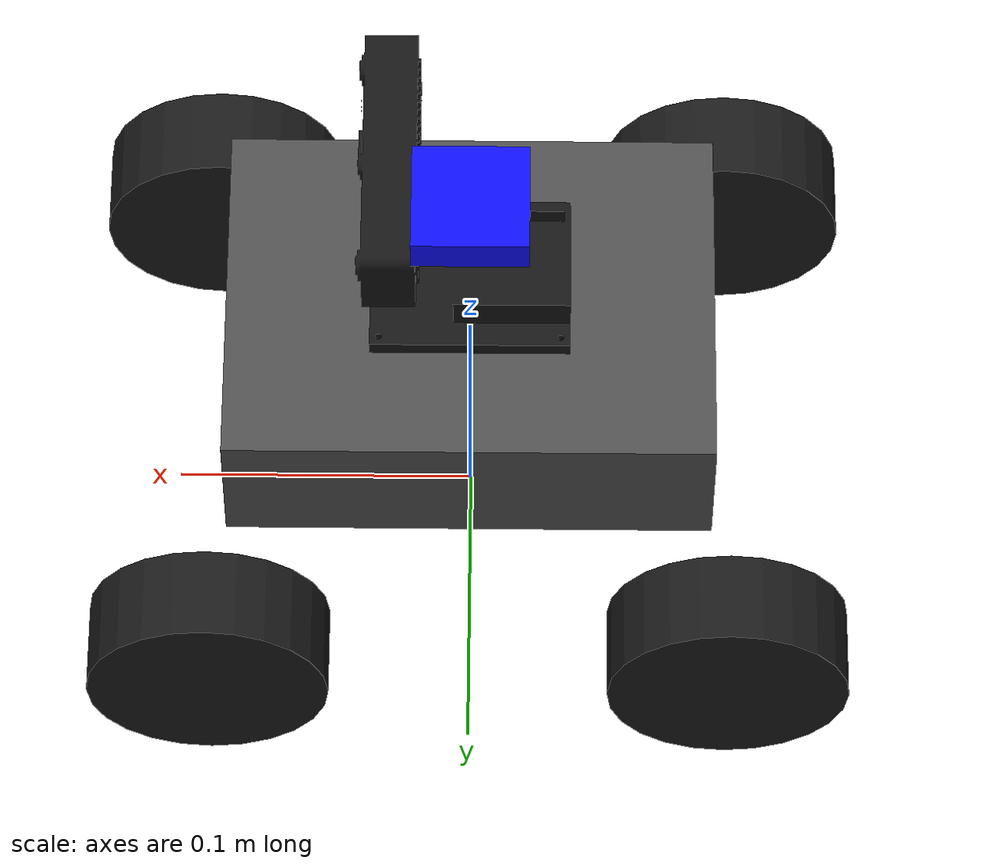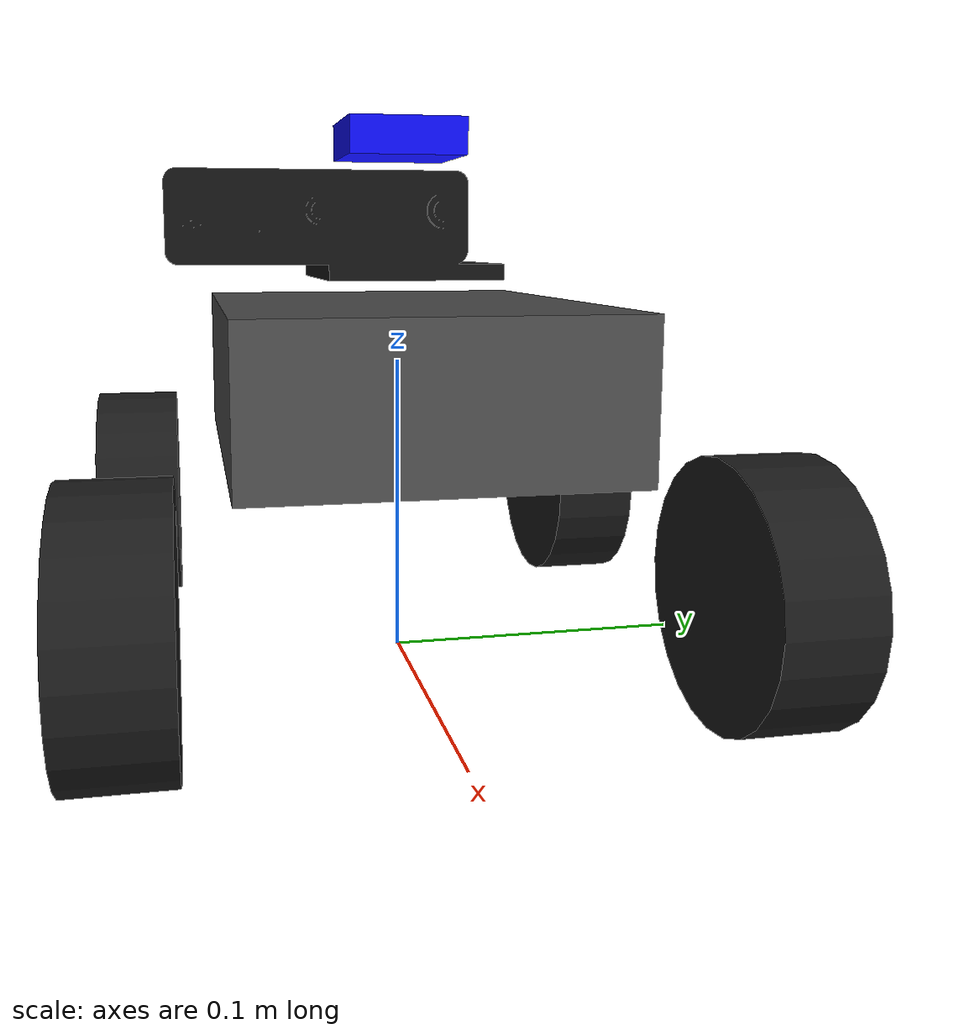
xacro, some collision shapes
<?xml version="1.0"?>
<robot name="mickrobot" xmlns:xacro="http://ros.org/wiki/xacro">

  <link name="base_footprint">
    <visual>
      <geometry>
        <sphere radius="0.001" />
      </geometry>
      <material name="invisible">
        <color rgba="0 0 0 0" />
      </material>
    </visual>
  </link>
  <joint name="base_joint" type="fixed">
    <parent link="base_footprint" />
    <child link="base_link" />
    <origin xyz="0 0 0" rpy="0 0 0" />
  </joint>
  <link name="top_payload_link">
    <visual>
      <origin xyz="0 0 0" rpy="0 0 0" />
      <geometry>
        <mesh filename="file://$(find mickrobot_description)/urdf/mesh/board_camera_radar_assembly.stl" scale="1 1 1" />
      </geometry>
      <material name="payload_dark">
        <color rgba="0.08 0.08 0.08 1" />
      </material>
    </visual>
    <inertial>
      <mass value="0.05" />
      <origin xyz="0 0 0.01" rpy="0 0 0" />
      <inertia ixx="1e-5" ixy="0" ixz="0" iyy="1e-5" iyz="0" izz="1e-5" />
    </inertial>
  </link>
  <joint name="top_payload_joint" type="fixed">
    <parent link="base_link" />
    <child link="top_payload_link" />
    <origin xyz="0 0 0.128031" rpy="0 0 0" />
  </joint>
  <link name="base_link">
    <visual>
      <origin xyz="0 0 0.082" rpy="0 0 0" />
      <geometry>
        <mesh filename="file://$(find mickrobot_description)/urdf/mesh/ugv01_body.STL" scale="0.001 0.001 0.001" />
      </geometry>
      <material name="chassis_gray">
        <color rgba="0.3 0.3 0.3 1" />
      </material>
    </visual>
    <!-- 窄腰碰撞：顶面 z≈0.12，低于雷达 z≈0.21，避免 360° 激光被自车遮挡 -->
    <collision>
      <origin xyz="0 0 0.095" rpy="0 0 0" />
      <geometry>
        <box size="0.16 0.12 0.05" />
      </geometry>
    </collision>
    <inertial>
      <mass value="7.0" />
      <origin xyz="0 0 0.055" rpy="0 0 0" />
      <inertia ixx="0.03" ixy="0" ixz="0" iyy="0.04" iyz="0" izz="0.05" />
    </inertial>
  </link>
  <link name="right_back_wheel">
    <visual>
      <origin xyz="0 0 0" rpy="1.57079 0 0" />
      <geometry>
        <cylinder radius="0.04" length="0.03" />
      </geometry>
      <material name="wheel_black">
        <color rgba="0.1 0.1 0.1 1" />
      </material>
    </visual>
    <collision>
      <origin xyz="0 0 0" rpy="1.57079 0 0" />
      <geometry>
        <cylinder radius="0.04" length="0.03" />
      </geometry>
    </collision>
    <inertial>
      <mass value="0.5" />
      <origin xyz="0 0 0" rpy="1.57079 0 0" />
      <inertia ixx="0.00024" ixy="0" ixz="0" iyy="0.00024" iyz="0" izz="0.0004" />
    </inertial>
  </link>
  <joint name="right_back_wheel_joint" type="continuous">
    <axis xyz="0 1 0" />
    <parent link="base_link" />
    <child link="right_back_wheel" />
    <origin xyz="-0.086 -0.09 0.04" />
    <limit effort="100" velocity="100" />
    <dynamics damping="0.2" friction="0.1" />
  </joint>
  <link name="right_front_wheel">
    <visual>
      <origin xyz="0 0 0" rpy="1.57079 0 0" />
      <geometry>
        <cylinder radius="0.04" length="0.03" />
      </geometry>
      <material name="wheel_black">
        <color rgba="0.1 0.1 0.1 1" />
      </material>
    </visual>
    <collision>
      <origin xyz="0 0 0" rpy="1.57079 0 0" />
      <geometry>
        <cylinder radius="0.04" length="0.03" />
      </geometry>
    </collision>
    <inertial>
      <mass value="0.5" />
      <origin xyz="0 0 0" rpy="1.57079 0 0" />
      <inertia ixx="0.00024" ixy="0" ixz="0" iyy="0.00024" iyz="0" izz="0.0004" />
    </inertial>
  </link>
  <joint name="right_front_wheel_joint" type="continuous">
    <axis xyz="0 1 0" />
    <parent link="base_link" />
    <child link="right_front_wheel" />
    <origin xyz="0.086 -0.09 0.04" />
    <limit effort="100" velocity="100" />
    <dynamics damping="0.2" friction="0.1" />
  </joint>
  <link name="left_back_wheel">
    <visual>
      <origin xyz="0 0 0" rpy="1.57079 0 0" />
      <geometry>
        <cylinder radius="0.04" length="0.03" />
      </geometry>
      <material name="wheel_black">
        <color rgba="0.1 0.1 0.1 1" />
      </material>
    </visual>
    <collision>
      <origin xyz="0 0 0" rpy="1.57079 0 0" />
      <geometry>
        <cylinder radius="0.04" length="0.03" />
      </geometry>
    </collision>
    <inertial>
      <mass value="0.5" />
      <origin xyz="0 0 0" rpy="1.57079 0 0" />
      <inertia ixx="0.00024" ixy="0" ixz="0" iyy="0.00024" iyz="0" izz="0.0004" />
    </inertial>
  </link>
  <joint name="left_back_wheel_joint" type="continuous">
    <axis xyz="0 1 0" />
    <parent link="base_link" />
    <child link="left_back_wheel" />
    <origin xyz="-0.086 0.09 0.04" />
    <limit effort="100" velocity="100" />
    <dynamics damping="0.2" friction="0.1" />
  </joint>
  <link name="left_front_wheel">
    <visual>
      <origin xyz="0 0 0" rpy="1.57079 0 0" />
      <geometry>
        <cylinder radius="0.04" length="0.03" />
      </geometry>
      <material name="wheel_black">
        <color rgba="0.1 0.1 0.1 1" />
      </material>
    </visual>
    <collision>
      <origin xyz="0 0 0" rpy="1.57079 0 0" />
      <geometry>
        <cylinder radius="0.04" length="0.03" />
      </geometry>
    </collision>
    <inertial>
      <mass value="0.5" />
      <origin xyz="0 0 0" rpy="1.57079 0 0" />
      <inertia ixx="0.00024" ixy="0" ixz="0" iyy="0.00024" iyz="0" izz="0.0004" />
    </inertial>
  </link>
  <joint name="left_front_wheel_joint" type="continuous">
    <axis xyz="0 1 0" />
    <parent link="base_link" />
    <child link="left_front_wheel" />
    <origin xyz="0.086 0.09 0.04" />
    <limit effort="100" velocity="100" />
    <dynamics damping="0.2" friction="0.1" />
  </joint>
  <!-- 中轮外观由 ugv01_body.STL 网格体现，不再单独建 link（避免 lump 成白圆柱） -->
  <link name="imu_link">
    <!-- 仅 IMU 传感器坐标系，无碰撞/外观，避免 lump 进 base 后白盒顶地 -->
    <inertial>
      <mass value="0.01" />
      <inertia ixx="1e-6" ixy="0" ixz="0" iyy="1e-6" iyz="0" izz="1e-6" />
    </inertial>
  </link>
  <joint name="imu_joint" type="fixed">
    <parent link="base_link" />
    <child link="imu_link" />
    <origin xyz="0 0 0.09" rpy="0 0 0" />
  </joint>
  <link name="laser_link">
    <!-- 无碰撞：仅视觉+传感器坐标系 -->
    <visual>
      <origin xyz="0 0 0" rpy="0 0 0" />
      <geometry>
        <box size="0.038 0.038 0.012" />
      </geometry>
      <material name="lidar_base_blue">
        <color rgba="0.05 0.05 1.0 1" />
      </material>
    </visual>
    <inertial>
      <mass value="0.05" />
      <inertia ixx="1e-5" ixy="0" ixz="0" iyy="1e-5" iyz="0" izz="1e-5" />
    </inertial>
  </link>
  <joint name="laser_joint" type="fixed">
    <parent link="top_payload_link" />
    <child link="laser_link" />
    <!-- 置于顶板上方，高于底盘碰撞盒 -->
    <origin xyz="0 0 0.045" rpy="0 0 0" />
  </joint>
  <link name="camera_left_link">
    <visual>
      <origin xyz="0 0 0" rpy="0 0 0" />
      <geometry>
        <box size="0.001 0.001 0.001" />
      </geometry>
      <material name="sensor_frame_invisible">
        <color rgba="0 0 0 0" />
      </material>
    </visual>
    <inertial>
      <mass value="0.001" />
      <inertia ixx="1e-9" ixy="0" ixz="0" iyy="1e-9" iyz="0" izz="1e-9" />
    </inertial>
  </link>
  <joint name="camera_left_joint" type="fixed">
    <parent link="base_link" />
    <child link="camera_left_link" />
    <origin xyz="0.0357 0.007274 0.149031" rpy="0 0 0" />
  </joint>
  <link name="camera_rgb_link">
    <visual>
      <origin xyz="0 0 0" rpy="0 0 0" />
      <geometry>
        <box size="0.001 0.001 0.001" />
      </geometry>
      <material name="sensor_frame_invisible">
        <color rgba="0 0 0 0" />
      </material>
    </visual>
    <inertial>
      <mass value="0.001" />
      <inertia ixx="1e-9" ixy="0" ixz="0" iyy="1e-9" iyz="0" izz="1e-9" />
    </inertial>
  </link>
  <joint name="camera_rgb_joint" type="fixed">
    <parent link="base_link" />
    <child link="camera_rgb_link" />
    <origin xyz="0.0357 -0.0305 0.149031" rpy="0 0 0" />
  </joint>
  <!-- OAK 模组内置 IMU（与 RGB 光心不同位，见 joint 偏移） -->
  <link name="camera_imu_link">
    <visual>
      <geometry>
        <box size="0.001 0.001 0.001" />
      </geometry>
      <material name="sensor_frame_invisible">
        <color rgba="0 0 0 0" />
      </material>
    </visual>
    <inertial>
      <mass value="0.001" />
      <inertia ixx="1e-9" ixy="0" ixz="0" iyy="1e-9" iyz="0" izz="1e-9" />
    </inertial>
  </link>
  <joint name="camera_imu_joint" type="fixed">
    <parent link="base_link" />
    <child link="camera_imu_link" />
  <!-- OAK-D IMU 约在模组中心，与 rgb/左目有毫米级偏差 -->
    <origin xyz="0.0357 -0.0315 0.149031" rpy="0 0 0" />
  </joint>
  <link name="camera_right_link">
    <visual>
      <origin xyz="0 0 0" rpy="0 0 0" />
      <geometry>
        <box size="0.001 0.001 0.001" />
      </geometry>
      <material name="sensor_frame_invisible">
        <color rgba="0 0 0 0" />
      </material>
    </visual>
    <inertial>
      <mass value="0.001" />
      <inertia ixx="1e-9" ixy="0" ixz="0" iyy="1e-9" iyz="0" izz="1e-9" />
    </inertial>
  </link>
  <joint name="camera_right_joint" type="fixed">
    <parent link="base_link" />
    <child link="camera_right_link" />
    <origin xyz="0.0357 -0.068274 0.149031" rpy="0 0 0" />
  </joint>

  <!-- [Humble迁移] 以下 Gazebo Classic 11 插件用于 Ubuntu 22.04 + Humble -->
  <!-- ==================== Gazebo Classic 插件 (Humble) ==================== -->

  <gazebo>
    <self_collide>false</self_collide>
  </gazebo>

  <gazebo reference="base_link">
    <material>Gazebo/DarkGrey</material>
  </gazebo>

  <!-- 四驱：各向同性摩擦，避免 fdir1 导致前后轴侧向力不一致 -->
  <gazebo reference="left_front_wheel">
    <material>Gazebo/Black</material>
    <mu1>1.0</mu1>
    <mu2>1.0</mu2>
    <kp>5e4</kp>
    <kd>200</kd>
    <minDepth>0.002</minDepth>
  </gazebo>
  <gazebo reference="right_front_wheel">
    <material>Gazebo/Black</material>
    <mu1>1.0</mu1>
    <mu2>1.0</mu2>
    <kp>5e4</kp>
    <kd>200</kd>
    <minDepth>0.002</minDepth>
  </gazebo>
  <gazebo reference="left_back_wheel">
    <material>Gazebo/Black</material>
    <mu1>1.0</mu1>
    <mu2>1.0</mu2>
    <kp>5e4</kp>
    <kd>200</kd>
    <minDepth>0.002</minDepth>
  </gazebo>
  <gazebo reference="right_back_wheel">
    <material>Gazebo/Black</material>
    <mu1>1.0</mu1>
    <mu2>1.0</mu2>
    <kp>5e4</kp>
    <kd>200</kd>
    <minDepth>0.002</minDepth>
  </gazebo>

  <gazebo>
    <plugin name="diff_drive" filename="libgazebo_ros_diff_drive.so">
      <ros>
        <remapping>odom:=/wheel/odom</remapping>
        <qos>
          <topic name="cmd_vel">
            <subscription>
              <durability>volatile</durability>
              <reliability>reliable</reliability>
            </subscription>
          </topic>
        </qos>
      </ros>
      <update_rate>50</update_rate>
      <!-- 前+后两轴真四驱（num_wheel_pairs=2，四轮独立驱动） -->
      <num_wheel_pairs>2</num_wheel_pairs>
      <left_joint>left_front_wheel_joint</left_joint>
      <right_joint>right_front_wheel_joint</right_joint>
      <left_joint>left_back_wheel_joint</left_joint>
      <right_joint>right_back_wheel_joint</right_joint>
      <wheel_separation>0.18</wheel_separation>
      <wheel_separation>0.18</wheel_separation>
      <wheel_diameter>0.08</wheel_diameter>
      <wheel_diameter>0.08</wheel_diameter>
      <max_wheel_torque>30</max_wheel_torque>
      <max_wheel_acceleration>5.0</max_wheel_acceleration>
      <command_topic>cmd_vel</command_topic>
      <publish_odom>true</publish_odom>
      <publish_odom_tf>false</publish_odom_tf>
      <publish_wheel_tf>false</publish_wheel_tf>
      <odometry_frame>odom</odometry_frame>
      <robot_base_frame>base_footprint</robot_base_frame>
    </plugin>
  </gazebo>

  <!-- 四轮关节角 → /joint_states，供 RViz RobotModel 与实车一致 -->
  <gazebo>
    <plugin name="joint_state_publisher" filename="libgazebo_ros_joint_state_publisher.so">
      <ros>
        <remapping>joint_states:=joint_states</remapping>
      </ros>
      <update_rate>30</update_rate>
      <joint_name>left_front_wheel_joint</joint_name>
      <joint_name>left_back_wheel_joint</joint_name>
      <joint_name>right_front_wheel_joint</joint_name>
      <joint_name>right_back_wheel_joint</joint_name>
    </plugin>
  </gazebo>

  <gazebo reference="imu_link">
    <sensor name="imu_sensor" type="imu">
      <always_on>true</always_on>
      <update_rate>100</update_rate>
      <imu>
        <angular_velocity>
          <x><noise type="gaussian"><mean>0</mean><stddev>2e-4</stddev></noise></x>
          <y><noise type="gaussian"><mean>0</mean><stddev>2e-4</stddev></noise></y>
          <z><noise type="gaussian"><mean>0</mean><stddev>2e-4</stddev></noise></z>
        </angular_velocity>
        <linear_acceleration>
          <x><noise type="gaussian"><mean>0</mean><stddev>1.7e-2</stddev></noise></x>
          <y><noise type="gaussian"><mean>0</mean><stddev>1.7e-2</stddev></noise></y>
          <z><noise type="gaussian"><mean>0</mean><stddev>1.7e-2</stddev></noise></z>
        </linear_acceleration>
      </imu>
      <plugin name="imu_plugin" filename="libgazebo_ros_imu_sensor.so">
        <ros>
          <remapping>~/out:=imu/data</remapping>
        </ros>
        <frame_name>imu_link</frame_name>
      </plugin>
    </sensor>
  </gazebo>

  <gazebo reference="camera_imu_link">
    <sensor name="camera_imu_sensor" type="imu">
      <always_on>true</always_on>
      <update_rate>100</update_rate>
      <imu>
        <angular_velocity>
          <x><noise type="gaussian"><mean>0</mean><stddev>2e-4</stddev></noise></x>
          <y><noise type="gaussian"><mean>0</mean><stddev>2e-4</stddev></noise></y>
          <z><noise type="gaussian"><mean>0</mean><stddev>2e-4</stddev></noise></z>
        </angular_velocity>
        <linear_acceleration>
          <x><noise type="gaussian"><mean>0</mean><stddev>1.7e-2</stddev></noise></x>
          <y><noise type="gaussian"><mean>0</mean><stddev>1.7e-2</stddev></noise></y>
          <z><noise type="gaussian"><mean>0</mean><stddev>1.7e-2</stddev></noise></z>
        </linear_acceleration>
      </imu>
      <plugin name="camera_imu_plugin" filename="libgazebo_ros_imu_sensor.so">
        <ros>
          <remapping>~/out:=camera/imu/data</remapping>
        </ros>
        <frame_name>camera_imu_link</frame_name>
      </plugin>
    </sensor>
  </gazebo>

  <gazebo reference="camera_left_link">
    <sensor name="camera_left_sensor" type="camera">
      <always_on>true</always_on>
      <update_rate>30</update_rate>
      <camera>
        <horizontal_fov>1.047</horizontal_fov>
        <image>
          <width>640</width>
          <height>480</height>
        </image>
        <clip>
          <near>0.1</near>
          <far>100</far>
        </clip>
      </camera>
      <plugin name="camera_left_plugin" filename="libgazebo_ros_camera.so">
        <ros>
          <namespace>camera</namespace>
        </ros>
        <camera_name>left</camera_name>
        <frame_name>camera_left_link</frame_name>
      </plugin>
    </sensor>
  </gazebo>

  <gazebo reference="camera_right_link">
    <sensor name="camera_right_sensor" type="camera">
      <always_on>true</always_on>
      <update_rate>30</update_rate>
      <camera>
        <horizontal_fov>1.047</horizontal_fov>
        <image>
          <width>640</width>
          <height>480</height>
        </image>
        <clip>
          <near>0.1</near>
          <far>100</far>
        </clip>
      </camera>
      <plugin name="camera_right_plugin" filename="libgazebo_ros_camera.so">
        <ros>
          <namespace>camera</namespace>
        </ros>
        <camera_name>right</camera_name>
        <frame_name>camera_right_link</frame_name>
      </plugin>
    </sensor>
  </gazebo>

  <gazebo reference="laser_link">
    <material>Gazebo/Blue</material>
    <sensor name="lidar" type="ray">
      <always_on>true</always_on>
      <update_rate>10</update_rate>
      <visualize>true</visualize>
      <pose>0 0 0.01 0 0 0</pose>
      <ray>
        <scan>
          <horizontal>
            <samples>360</samples>
            <resolution>1</resolution>
            <min_angle>-3.14159</min_angle>
            <max_angle>3.14159</max_angle>
          </horizontal>
        </scan>
        <range>
          <min>0.15</min>
          <max>12.0</max>
          <resolution>0.01</resolution>
        </range>
      </ray>
      <plugin name="laser_plugin" filename="libgazebo_ros_ray_sensor.so">
        <ros>
          <remapping>~/out:=scan</remapping>
        </ros>
        <output_type>sensor_msgs/LaserScan</output_type>
        <frame_name>laser_link</frame_name>
      </plugin>
    </sensor>
  </gazebo>

</robot>
